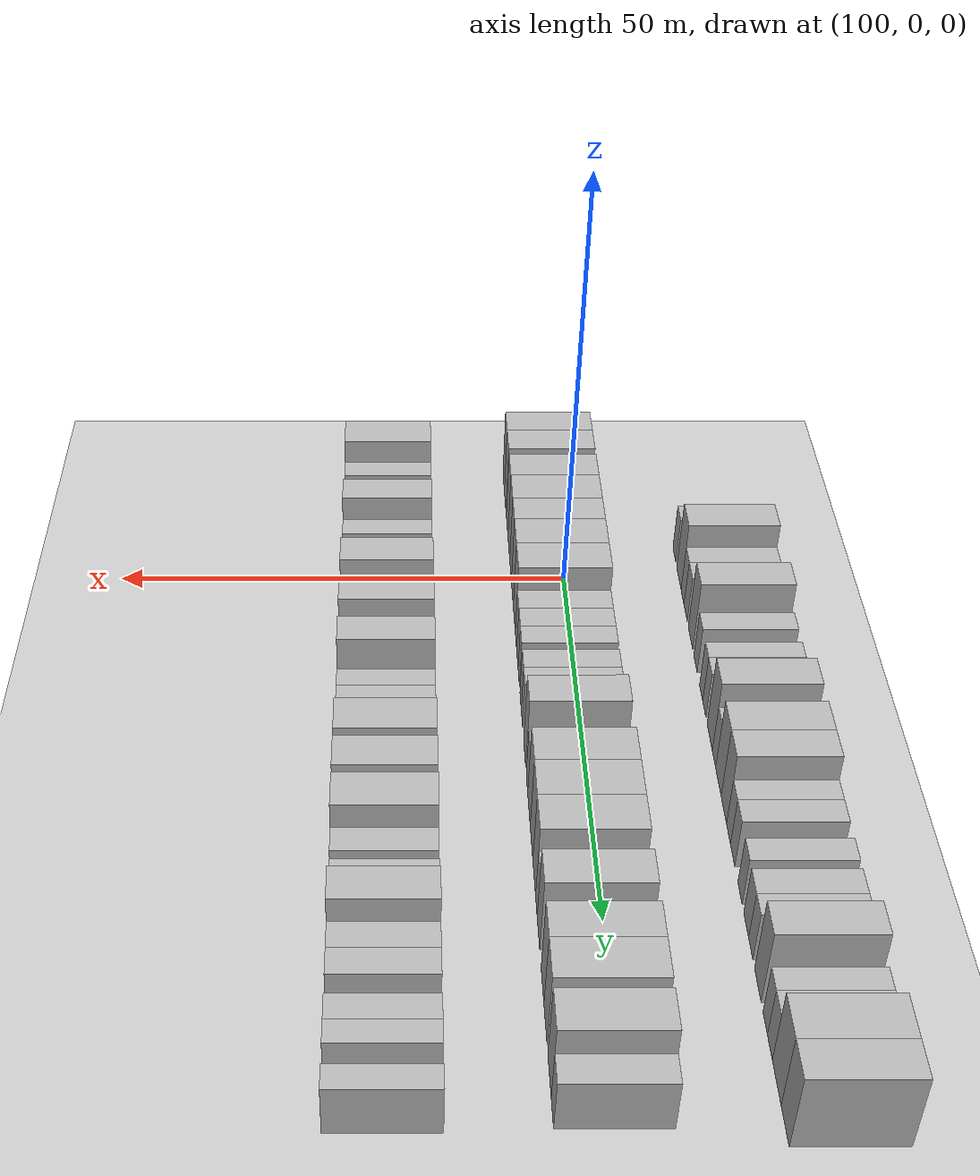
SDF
<sdf version="1.6">
 <world name="default">
  <include>
   <name>ground_plane_2</name>
   <uri>model://HANNAS_ground_plane</uri>
   <pose>100 0 0  0 0 0</pose>
  </include>
  <model name="building_620">
   <static>1</static>
   <pose>82.0000 -4.4028 0 0.000000 0.000000 0.000000</pose>
   <link name="link">
    <pose>0 0 3.00 0 0 0</pose>
    <collision name="collision"><geometry><box><size>10.0000 2.6106 6.0000</size></box></geometry></collision>
    <visual name="visual">
     <cast_shadows>0</cast_shadows>
     <geometry><box><size>10.0000 2.6106 6.0000</size></box></geometry>
     <material>
      <script>
       <uri>model://HANNAS_wall/materials/scripts</uri>
       <uri>model://HANNAS_wall/materials/textures</uri>
       <name>vrc/HANNAS_wall</name>
      </script>
     </material>
    </visual>
   </link>
  </model>
  <model name="building_621">
   <static>1</static>
   <pose>82.0000 -0.0643 0 0.000000 0.000000 0.000000</pose>
   <link name="link">
    <pose>0 0 4.50 0 0 0</pose>
    <collision name="collision"><geometry><box><size>10.0000 4.0662 9.0000</size></box></geometry></collision>
    <visual name="visual">
     <cast_shadows>0</cast_shadows>
     <geometry><box><size>10.0000 4.0662 9.0000</size></box></geometry>
     <material>
      <script>
       <uri>model://HANNAS_wall/materials/scripts</uri>
       <uri>model://HANNAS_wall/materials/textures</uri>
       <name>vrc/HANNAS_wall</name>
      </script>
     </material>
    </visual>
   </link>
  </model>
  <model name="building_622">
   <static>1</static>
   <pose>82.0000 3.2777 0 0.000000 0.000000 0.000000</pose>
   <link name="link">
    <pose>0 0 3.00 0 0 0</pose>
    <collision name="collision"><geometry><box><size>10.0000 2.6178 6.0000</size></box></geometry></collision>
    <visual name="visual">
     <cast_shadows>0</cast_shadows>
     <geometry><box><size>10.0000 2.6178 6.0000</size></box></geometry>
     <material>
      <script>
       <uri>model://HANNAS_wall/materials/scripts</uri>
       <uri>model://HANNAS_wall/materials/textures</uri>
       <name>vrc/HANNAS_wall</name>
      </script>
     </material>
    </visual>
   </link>
  </model>
  <model name="building_623">
   <static>1</static>
   <pose>82.0000 6.0067 0 0.000000 0.000000 0.000000</pose>
   <link name="link">
    <pose>0 0 3.00 0 0 0</pose>
    <collision name="collision"><geometry><box><size>10.0000 2.8402 6.0000</size></box></geometry></collision>
    <visual name="visual">
     <cast_shadows>0</cast_shadows>
     <geometry><box><size>10.0000 2.8402 6.0000</size></box></geometry>
     <material>
      <script>
       <uri>model://HANNAS_wall/materials/scripts</uri>
       <uri>model://HANNAS_wall/materials/textures</uri>
       <name>vrc/HANNAS_wall</name>
      </script>
     </material>
    </visual>
   </link>
  </model>
  <model name="building_624">
   <static>1</static>
   <pose>82.0000 10.3122 0 0.000000 0.000000 0.000000</pose>
   <link name="link">
    <pose>0 0 4.50 0 0 0</pose>
    <collision name="collision"><geometry><box><size>10.0000 3.7707 9.0000</size></box></geometry></collision>
    <visual name="visual">
     <cast_shadows>0</cast_shadows>
     <geometry><box><size>10.0000 3.7707 9.0000</size></box></geometry>
     <material>
      <script>
       <uri>model://HANNAS_wall/materials/scripts</uri>
       <uri>model://HANNAS_wall/materials/textures</uri>
       <name>vrc/HANNAS_wall</name>
      </script>
     </material>
    </visual>
   </link>
  </model>
  <model name="building_625">
   <static>1</static>
   <pose>82.0000 14.5459 0 0.000000 0.000000 0.000000</pose>
   <link name="link">
    <pose>0 0 3.00 0 0 0</pose>
    <collision name="collision"><geometry><box><size>10.0000 2.6968 6.0000</size></box></geometry></collision>
    <visual name="visual">
     <cast_shadows>0</cast_shadows>
     <geometry><box><size>10.0000 2.6968 6.0000</size></box></geometry>
     <material>
      <script>
       <uri>model://HANNAS_wall/materials/scripts</uri>
       <uri>model://HANNAS_wall/materials/textures</uri>
       <name>vrc/HANNAS_wall</name>
      </script>
     </material>
    </visual>
   </link>
  </model>
  <model name="building_626">
   <static>1</static>
   <pose>82.0000 19.1237 0 0.000000 0.000000 0.000000</pose>
   <link name="link">
    <pose>0 0 3.00 0 0 0</pose>
    <collision name="collision"><geometry><box><size>10.0000 2.4588 6.0000</size></box></geometry></collision>
    <visual name="visual">
     <cast_shadows>0</cast_shadows>
     <geometry><box><size>10.0000 2.4588 6.0000</size></box></geometry>
     <material>
      <script>
       <uri>model://HANNAS_wall/materials/scripts</uri>
       <uri>model://HANNAS_wall/materials/textures</uri>
       <name>vrc/HANNAS_wall</name>
      </script>
     </material>
    </visual>
   </link>
  </model>
  <model name="building_627">
   <static>1</static>
   <pose>82.0000 21.5980 0 0.000000 0.000000 0.000000</pose>
   <link name="link">
    <pose>0 0 3.00 0 0 0</pose>
    <collision name="collision"><geometry><box><size>10.0000 2.4897 6.0000</size></box></geometry></collision>
    <visual name="visual">
     <cast_shadows>0</cast_shadows>
     <geometry><box><size>10.0000 2.4897 6.0000</size></box></geometry>
     <material>
      <script>
       <uri>model://HANNAS_wall/materials/scripts</uri>
       <uri>model://HANNAS_wall/materials/textures</uri>
       <name>vrc/HANNAS_wall</name>
      </script>
     </material>
    </visual>
   </link>
  </model>
  <model name="building_628">
   <static>1</static>
   <pose>82.0000 25.7994 0 0.000000 0.000000 0.000000</pose>
   <link name="link">
    <pose>0 0 4.50 0 0 0</pose>
    <collision name="collision"><geometry><box><size>10.0000 3.9131 9.0000</size></box></geometry></collision>
    <visual name="visual">
     <cast_shadows>0</cast_shadows>
     <geometry><box><size>10.0000 3.9131 9.0000</size></box></geometry>
     <material>
      <script>
       <uri>model://HANNAS_wall/materials/scripts</uri>
       <uri>model://HANNAS_wall/materials/textures</uri>
       <name>vrc/HANNAS_wall</name>
      </script>
     </material>
    </visual>
   </link>
  </model>
  <model name="building_629">
   <static>1</static>
   <pose>82.0000 28.9595 0 0.000000 0.000000 0.000000</pose>
   <link name="link">
    <pose>0 0 3.00 0 0 0</pose>
    <collision name="collision"><geometry><box><size>10.0000 2.4070 6.0000</size></box></geometry></collision>
    <visual name="visual">
     <cast_shadows>0</cast_shadows>
     <geometry><box><size>10.0000 2.4070 6.0000</size></box></geometry>
     <material>
      <script>
       <uri>model://HANNAS_wall/materials/scripts</uri>
       <uri>model://HANNAS_wall/materials/textures</uri>
       <name>vrc/HANNAS_wall</name>
      </script>
     </material>
    </visual>
   </link>
  </model>
  <model name="building_630">
   <static>1</static>
   <pose>82.0000 32.1423 0 0.000000 0.000000 0.000000</pose>
   <link name="link">
    <pose>0 0 4.50 0 0 0</pose>
    <collision name="collision"><geometry><box><size>10.0000 3.9587 9.0000</size></box></geometry></collision>
    <visual name="visual">
     <cast_shadows>0</cast_shadows>
     <geometry><box><size>10.0000 3.9587 9.0000</size></box></geometry>
     <material>
      <script>
       <uri>model://HANNAS_wall/materials/scripts</uri>
       <uri>model://HANNAS_wall/materials/textures</uri>
       <name>vrc/HANNAS_wall</name>
      </script>
     </material>
    </visual>
   </link>
  </model>
  <model name="building_631">
   <static>1</static>
   <pose>82.0000 35.9850 0 0.000000 0.000000 0.000000</pose>
   <link name="link">
    <pose>0 0 4.50 0 0 0</pose>
    <collision name="collision"><geometry><box><size>10.0000 3.7268 9.0000</size></box></geometry></collision>
    <visual name="visual">
     <cast_shadows>0</cast_shadows>
     <geometry><box><size>10.0000 3.7268 9.0000</size></box></geometry>
     <material>
      <script>
       <uri>model://HANNAS_wall/materials/scripts</uri>
       <uri>model://HANNAS_wall/materials/textures</uri>
       <name>vrc/HANNAS_wall</name>
      </script>
     </material>
    </visual>
   </link>
  </model>
  <model name="building_632">
   <static>1</static>
   <pose>82.0000 39.1708 0 0.000000 0.000000 0.000000</pose>
   <link name="link">
    <pose>0 0 3.00 0 0 0</pose>
    <collision name="collision"><geometry><box><size>10.0000 2.6448 6.0000</size></box></geometry></collision>
    <visual name="visual">
     <cast_shadows>0</cast_shadows>
     <geometry><box><size>10.0000 2.6448 6.0000</size></box></geometry>
     <material>
      <script>
       <uri>model://HANNAS_wall/materials/scripts</uri>
       <uri>model://HANNAS_wall/materials/textures</uri>
       <name>vrc/HANNAS_wall</name>
      </script>
     </material>
    </visual>
   </link>
  </model>
  <model name="building_633">
   <static>1</static>
   <pose>82.0000 41.9061 0 0.000000 0.000000 0.000000</pose>
   <link name="link">
    <pose>0 0 3.00 0 0 0</pose>
    <collision name="collision"><geometry><box><size>10.0000 2.8257 6.0000</size></box></geometry></collision>
    <visual name="visual">
     <cast_shadows>0</cast_shadows>
     <geometry><box><size>10.0000 2.8257 6.0000</size></box></geometry>
     <material>
      <script>
       <uri>model://HANNAS_wall/materials/scripts</uri>
       <uri>model://HANNAS_wall/materials/textures</uri>
       <name>vrc/HANNAS_wall</name>
      </script>
     </material>
    </visual>
   </link>
  </model>
  <model name="building_634">
   <static>1</static>
   <pose>82.0000 46.6641 0 0.000000 0.000000 0.000000</pose>
   <link name="link">
    <pose>0 0 3.00 0 0 0</pose>
    <collision name="collision"><geometry><box><size>10.0000 2.6903 6.0000</size></box></geometry></collision>
    <visual name="visual">
     <cast_shadows>0</cast_shadows>
     <geometry><box><size>10.0000 2.6903 6.0000</size></box></geometry>
     <material>
      <script>
       <uri>model://HANNAS_wall/materials/scripts</uri>
       <uri>model://HANNAS_wall/materials/textures</uri>
       <name>vrc/HANNAS_wall</name>
      </script>
     </material>
    </visual>
   </link>
  </model>
  <model name="building_635">
   <static>1</static>
   <pose>82.0000 50.4717 0 0.000000 0.000000 0.000000</pose>
   <link name="link">
    <pose>0 0 3.00 0 0 0</pose>
    <collision name="collision"><geometry><box><size>10.0000 2.9249 6.0000</size></box></geometry></collision>
    <visual name="visual">
     <cast_shadows>0</cast_shadows>
     <geometry><box><size>10.0000 2.9249 6.0000</size></box></geometry>
     <material>
      <script>
       <uri>model://HANNAS_wall/materials/scripts</uri>
       <uri>model://HANNAS_wall/materials/textures</uri>
       <name>vrc/HANNAS_wall</name>
      </script>
     </material>
    </visual>
   </link>
  </model>
  <model name="building_636">
   <static>1</static>
   <pose>82.0000 53.1806 0 0.000000 0.000000 0.000000</pose>
   <link name="link">
    <pose>0 0 3.00 0 0 0</pose>
    <collision name="collision"><geometry><box><size>10.0000 2.4930 6.0000</size></box></geometry></collision>
    <visual name="visual">
     <cast_shadows>0</cast_shadows>
     <geometry><box><size>10.0000 2.4930 6.0000</size></box></geometry>
     <material>
      <script>
       <uri>model://HANNAS_wall/materials/scripts</uri>
       <uri>model://HANNAS_wall/materials/textures</uri>
       <name>vrc/HANNAS_wall</name>
      </script>
     </material>
    </visual>
   </link>
  </model>
  <model name="building_637">
   <static>1</static>
   <pose>82.0000 57.2948 0 0.000000 0.000000 0.000000</pose>
   <link name="link">
    <pose>0 0 4.50 0 0 0</pose>
    <collision name="collision"><geometry><box><size>10.0000 3.7355 9.0000</size></box></geometry></collision>
    <visual name="visual">
     <cast_shadows>0</cast_shadows>
     <geometry><box><size>10.0000 3.7355 9.0000</size></box></geometry>
     <material>
      <script>
       <uri>model://HANNAS_wall/materials/scripts</uri>
       <uri>model://HANNAS_wall/materials/textures</uri>
       <name>vrc/HANNAS_wall</name>
      </script>
     </material>
    </visual>
   </link>
  </model>
  <model name="building_638">
   <static>1</static>
   <pose>82.0000 61.3716 0 0.000000 0.000000 0.000000</pose>
   <link name="link">
    <pose>0 0 3.00 0 0 0</pose>
    <collision name="collision"><geometry><box><size>10.0000 2.4181 6.0000</size></box></geometry></collision>
    <visual name="visual">
     <cast_shadows>0</cast_shadows>
     <geometry><box><size>10.0000 2.4181 6.0000</size></box></geometry>
     <material>
      <script>
       <uri>model://HANNAS_wall/materials/scripts</uri>
       <uri>model://HANNAS_wall/materials/textures</uri>
       <name>vrc/HANNAS_wall</name>
      </script>
     </material>
    </visual>
   </link>
  </model>
  <model name="building_639">
   <static>1</static>
   <pose>82.0000 63.8871 0 0.000000 0.000000 0.000000</pose>
   <link name="link">
    <pose>0 0 3.00 0 0 0</pose>
    <collision name="collision"><geometry><box><size>10.0000 2.6130 6.0000</size></box></geometry></collision>
    <visual name="visual">
     <cast_shadows>0</cast_shadows>
     <geometry><box><size>10.0000 2.6130 6.0000</size></box></geometry>
     <material>
      <script>
       <uri>model://HANNAS_wall/materials/scripts</uri>
       <uri>model://HANNAS_wall/materials/textures</uri>
       <name>vrc/HANNAS_wall</name>
      </script>
     </material>
    </visual>
   </link>
  </model>
  <model name="building_640">
   <static>1</static>
   <pose>82.0000 67.4422 0 0.000000 0.000000 0.000000</pose>
   <link name="link">
    <pose>0 0 4.50 0 0 0</pose>
    <collision name="collision"><geometry><box><size>10.0000 4.4972 9.0000</size></box></geometry></collision>
    <visual name="visual">
     <cast_shadows>0</cast_shadows>
     <geometry><box><size>10.0000 4.4972 9.0000</size></box></geometry>
     <material>
      <script>
       <uri>model://HANNAS_wall/materials/scripts</uri>
       <uri>model://HANNAS_wall/materials/textures</uri>
       <name>vrc/HANNAS_wall</name>
      </script>
     </material>
    </visual>
   </link>
  </model>
  <model name="building_641">
   <static>1</static>
   <pose>82.0000 71.6640 0 0.000000 0.000000 0.000000</pose>
   <link name="link">
    <pose>0 0 4.50 0 0 0</pose>
    <collision name="collision"><geometry><box><size>10.0000 3.9463 9.0000</size></box></geometry></collision>
    <visual name="visual">
     <cast_shadows>0</cast_shadows>
     <geometry><box><size>10.0000 3.9463 9.0000</size></box></geometry>
     <material>
      <script>
       <uri>model://HANNAS_wall/materials/scripts</uri>
       <uri>model://HANNAS_wall/materials/textures</uri>
       <name>vrc/HANNAS_wall</name>
      </script>
     </material>
    </visual>
   </link>
  </model>
  <model name="building_801">
   <static>1</static>
   <pose>101.0000 -18.6708 0 0.000000 0.000000 0.000000</pose>
   <link name="link">
    <pose>0 0 4.50 0 0 0</pose>
    <collision name="collision"><geometry><box><size>10.0000 3.7725 9.0000</size></box></geometry></collision>
    <visual name="visual">
     <cast_shadows>0</cast_shadows>
     <geometry><box><size>10.0000 3.7725 9.0000</size></box></geometry>
     <material>
      <script>
       <uri>model://HANNAS_wall/materials/scripts</uri>
       <uri>model://HANNAS_wall/materials/textures</uri>
       <name>vrc/HANNAS_wall</name>
      </script>
     </material>
    </visual>
   </link>
  </model>
  <model name="building_802">
   <static>1</static>
   <pose>101.0000 -14.7965 0 0.000000 0.000000 0.000000</pose>
   <link name="link">
    <pose>0 0 4.50 0 0 0</pose>
    <collision name="collision"><geometry><box><size>10.0000 3.9760 9.0000</size></box></geometry></collision>
    <visual name="visual">
     <cast_shadows>0</cast_shadows>
     <geometry><box><size>10.0000 3.9760 9.0000</size></box></geometry>
     <material>
      <script>
       <uri>model://HANNAS_wall/materials/scripts</uri>
       <uri>model://HANNAS_wall/materials/textures</uri>
       <name>vrc/HANNAS_wall</name>
      </script>
     </material>
    </visual>
   </link>
  </model>
  <model name="building_803">
   <static>1</static>
   <pose>101.0000 -9.7458 0 0.000000 0.000000 0.000000</pose>
   <link name="link">
    <pose>0 0 4.50 0 0 0</pose>
    <collision name="collision"><geometry><box><size>10.0000 4.1254 9.0000</size></box></geometry></collision>
    <visual name="visual">
     <cast_shadows>0</cast_shadows>
     <geometry><box><size>10.0000 4.1254 9.0000</size></box></geometry>
     <material>
      <script>
       <uri>model://HANNAS_wall/materials/scripts</uri>
       <uri>model://HANNAS_wall/materials/textures</uri>
       <name>vrc/HANNAS_wall</name>
      </script>
     </material>
    </visual>
   </link>
  </model>
  <model name="building_804">
   <static>1</static>
   <pose>101.0000 -5.4670 0 0.000000 0.000000 0.000000</pose>
   <link name="link">
    <pose>0 0 4.50 0 0 0</pose>
    <collision name="collision"><geometry><box><size>10.0000 4.4321 9.0000</size></box></geometry></collision>
    <visual name="visual">
     <cast_shadows>0</cast_shadows>
     <geometry><box><size>10.0000 4.4321 9.0000</size></box></geometry>
     <material>
      <script>
       <uri>model://HANNAS_wall/materials/scripts</uri>
       <uri>model://HANNAS_wall/materials/textures</uri>
       <name>vrc/HANNAS_wall</name>
      </script>
     </material>
    </visual>
   </link>
  </model>
  <model name="building_805">
   <static>1</static>
   <pose>101.0000 -1.3213 0 0.000000 0.000000 0.000000</pose>
   <link name="link">
    <pose>0 0 4.50 0 0 0</pose>
    <collision name="collision"><geometry><box><size>10.0000 3.8593 9.0000</size></box></geometry></collision>
    <visual name="visual">
     <cast_shadows>0</cast_shadows>
     <geometry><box><size>10.0000 3.8593 9.0000</size></box></geometry>
     <material>
      <script>
       <uri>model://HANNAS_wall/materials/scripts</uri>
       <uri>model://HANNAS_wall/materials/textures</uri>
       <name>vrc/HANNAS_wall</name>
      </script>
     </material>
    </visual>
   </link>
  </model>
  <model name="building_806">
   <static>1</static>
   <pose>101.0000 2.7919 0 0.000000 0.000000 0.000000</pose>
   <link name="link">
    <pose>0 0 4.50 0 0 0</pose>
    <collision name="collision"><geometry><box><size>10.0000 4.3671 9.0000</size></box></geometry></collision>
    <visual name="visual">
     <cast_shadows>0</cast_shadows>
     <geometry><box><size>10.0000 4.3671 9.0000</size></box></geometry>
     <material>
      <script>
       <uri>model://HANNAS_wall/materials/scripts</uri>
       <uri>model://HANNAS_wall/materials/textures</uri>
       <name>vrc/HANNAS_wall</name>
      </script>
     </material>
    </visual>
   </link>
  </model>
  <model name="building_807">
   <static>1</static>
   <pose>101.0000 7.1715 0 0.000000 0.000000 0.000000</pose>
   <link name="link">
    <pose>0 0 4.50 0 0 0</pose>
    <collision name="collision"><geometry><box><size>10.0000 4.3922 9.0000</size></box></geometry></collision>
    <visual name="visual">
     <cast_shadows>0</cast_shadows>
     <geometry><box><size>10.0000 4.3922 9.0000</size></box></geometry>
     <material>
      <script>
       <uri>model://HANNAS_wall/materials/scripts</uri>
       <uri>model://HANNAS_wall/materials/textures</uri>
       <name>vrc/HANNAS_wall</name>
      </script>
     </material>
    </visual>
   </link>
  </model>
  <model name="building_808">
   <static>1</static>
   <pose>101.0000 10.8599 0 0.000000 0.000000 0.000000</pose>
   <link name="link">
    <pose>0 0 3.00 0 0 0</pose>
    <collision name="collision"><geometry><box><size>10.0000 2.9845 6.0000</size></box></geometry></collision>
    <visual name="visual">
     <cast_shadows>0</cast_shadows>
     <geometry><box><size>10.0000 2.9845 6.0000</size></box></geometry>
     <material>
      <script>
       <uri>model://HANNAS_wall/materials/scripts</uri>
       <uri>model://HANNAS_wall/materials/textures</uri>
       <name>vrc/HANNAS_wall</name>
      </script>
     </material>
    </visual>
   </link>
  </model>
  <model name="building_809">
   <static>1</static>
   <pose>101.0000 13.8276 0 0.000000 0.000000 0.000000</pose>
   <link name="link">
    <pose>0 0 3.00 0 0 0</pose>
    <collision name="collision"><geometry><box><size>10.0000 2.9509 6.0000</size></box></geometry></collision>
    <visual name="visual">
     <cast_shadows>0</cast_shadows>
     <geometry><box><size>10.0000 2.9509 6.0000</size></box></geometry>
     <material>
      <script>
       <uri>model://HANNAS_wall/materials/scripts</uri>
       <uri>model://HANNAS_wall/materials/textures</uri>
       <name>vrc/HANNAS_wall</name>
      </script>
     </material>
    </visual>
   </link>
  </model>
  <model name="building_810">
   <static>1</static>
   <pose>101.0000 16.6989 0 0.000000 0.000000 0.000000</pose>
   <link name="link">
    <pose>0 0 3.00 0 0 0</pose>
    <collision name="collision"><geometry><box><size>10.0000 2.7917 6.0000</size></box></geometry></collision>
    <visual name="visual">
     <cast_shadows>0</cast_shadows>
     <geometry><box><size>10.0000 2.7917 6.0000</size></box></geometry>
     <material>
      <script>
       <uri>model://HANNAS_wall/materials/scripts</uri>
       <uri>model://HANNAS_wall/materials/textures</uri>
       <name>vrc/HANNAS_wall</name>
      </script>
     </material>
    </visual>
   </link>
  </model>
  <model name="building_811">
   <static>1</static>
   <pose>101.0000 20.4607 0 0.000000 0.000000 0.000000</pose>
   <link name="link">
    <pose>0 0 3.00 0 0 0</pose>
    <collision name="collision"><geometry><box><size>10.0000 2.7321 6.0000</size></box></geometry></collision>
    <visual name="visual">
     <cast_shadows>0</cast_shadows>
     <geometry><box><size>10.0000 2.7321 6.0000</size></box></geometry>
     <material>
      <script>
       <uri>model://HANNAS_wall/materials/scripts</uri>
       <uri>model://HANNAS_wall/materials/textures</uri>
       <name>vrc/HANNAS_wall</name>
      </script>
     </material>
    </visual>
   </link>
  </model>
  <model name="building_812">
   <static>1</static>
   <pose>101.0000 23.0711 0 0.000000 0.000000 0.000000</pose>
   <link name="link">
    <pose>0 0 3.00 0 0 0</pose>
    <collision name="collision"><geometry><box><size>10.0000 2.4886 6.0000</size></box></geometry></collision>
    <visual name="visual">
     <cast_shadows>0</cast_shadows>
     <geometry><box><size>10.0000 2.4886 6.0000</size></box></geometry>
     <material>
      <script>
       <uri>model://HANNAS_wall/materials/scripts</uri>
       <uri>model://HANNAS_wall/materials/textures</uri>
       <name>vrc/HANNAS_wall</name>
      </script>
     </material>
    </visual>
   </link>
  </model>
  <model name="building_813">
   <static>1</static>
   <pose>101.0000 28.2526 0 0.000000 0.000000 0.000000</pose>
   <link name="link">
    <pose>0 0 4.50 0 0 0</pose>
    <collision name="collision"><geometry><box><size>10.0000 3.8743 9.0000</size></box></geometry></collision>
    <visual name="visual">
     <cast_shadows>0</cast_shadows>
     <geometry><box><size>10.0000 3.8743 9.0000</size></box></geometry>
     <material>
      <script>
       <uri>model://HANNAS_wall/materials/scripts</uri>
       <uri>model://HANNAS_wall/materials/textures</uri>
       <name>vrc/HANNAS_wall</name>
      </script>
     </material>
    </visual>
   </link>
  </model>
  <model name="building_814">
   <static>1</static>
   <pose>101.0000 32.4813 0 0.000000 0.000000 0.000000</pose>
   <link name="link">
    <pose>0 0 3.00 0 0 0</pose>
    <collision name="collision"><geometry><box><size>10.0000 2.5833 6.0000</size></box></geometry></collision>
    <visual name="visual">
     <cast_shadows>0</cast_shadows>
     <geometry><box><size>10.0000 2.5833 6.0000</size></box></geometry>
     <material>
      <script>
       <uri>model://HANNAS_wall/materials/scripts</uri>
       <uri>model://HANNAS_wall/materials/textures</uri>
       <name>vrc/HANNAS_wall</name>
      </script>
     </material>
    </visual>
   </link>
  </model>
  <model name="building_815">
   <static>1</static>
   <pose>101.0000 35.9687 0 0.000000 0.000000 0.000000</pose>
   <link name="link">
    <pose>0 0 4.50 0 0 0</pose>
    <collision name="collision"><geometry><box><size>10.0000 4.3914 9.0000</size></box></geometry></collision>
    <visual name="visual">
     <cast_shadows>0</cast_shadows>
     <geometry><box><size>10.0000 4.3914 9.0000</size></box></geometry>
     <material>
      <script>
       <uri>model://HANNAS_wall/materials/scripts</uri>
       <uri>model://HANNAS_wall/materials/textures</uri>
       <name>vrc/HANNAS_wall</name>
      </script>
     </material>
    </visual>
   </link>
  </model>
  <model name="building_816">
   <static>1</static>
   <pose>101.0000 40.4002 0 0.000000 0.000000 0.000000</pose>
   <link name="link">
    <pose>0 0 4.50 0 0 0</pose>
    <collision name="collision"><geometry><box><size>10.0000 4.4716 9.0000</size></box></geometry></collision>
    <visual name="visual">
     <cast_shadows>0</cast_shadows>
     <geometry><box><size>10.0000 4.4716 9.0000</size></box></geometry>
     <material>
      <script>
       <uri>model://HANNAS_wall/materials/scripts</uri>
       <uri>model://HANNAS_wall/materials/textures</uri>
       <name>vrc/HANNAS_wall</name>
      </script>
     </material>
    </visual>
   </link>
  </model>
  <model name="building_817">
   <static>1</static>
   <pose>101.0000 44.8185 0 0.000000 0.000000 0.000000</pose>
   <link name="link">
    <pose>0 0 4.50 0 0 0</pose>
    <collision name="collision"><geometry><box><size>10.0000 4.3651 9.0000</size></box></geometry></collision>
    <visual name="visual">
     <cast_shadows>0</cast_shadows>
     <geometry><box><size>10.0000 4.3651 9.0000</size></box></geometry>
     <material>
      <script>
       <uri>model://HANNAS_wall/materials/scripts</uri>
       <uri>model://HANNAS_wall/materials/textures</uri>
       <name>vrc/HANNAS_wall</name>
      </script>
     </material>
    </visual>
   </link>
  </model>
  <model name="building_818">
   <static>1</static>
   <pose>101.0000 48.2137 0 0.000000 0.000000 0.000000</pose>
   <link name="link">
    <pose>0 0 3.00 0 0 0</pose>
    <collision name="collision"><geometry><box><size>10.0000 2.4253 6.0000</size></box></geometry></collision>
    <visual name="visual">
     <cast_shadows>0</cast_shadows>
     <geometry><box><size>10.0000 2.4253 6.0000</size></box></geometry>
     <material>
      <script>
       <uri>model://HANNAS_wall/materials/scripts</uri>
       <uri>model://HANNAS_wall/materials/textures</uri>
       <name>vrc/HANNAS_wall</name>
      </script>
     </material>
    </visual>
   </link>
  </model>
  <model name="building_819">
   <static>1</static>
   <pose>101.0000 51.3904 0 0.000000 0.000000 0.000000</pose>
   <link name="link">
    <pose>0 0 4.50 0 0 0</pose>
    <collision name="collision"><geometry><box><size>10.0000 3.9280 9.0000</size></box></geometry></collision>
    <visual name="visual">
     <cast_shadows>0</cast_shadows>
     <geometry><box><size>10.0000 3.9280 9.0000</size></box></geometry>
     <material>
      <script>
       <uri>model://HANNAS_wall/materials/scripts</uri>
       <uri>model://HANNAS_wall/materials/textures</uri>
       <name>vrc/HANNAS_wall</name>
      </script>
     </material>
    </visual>
   </link>
  </model>
  <model name="building_820">
   <static>1</static>
   <pose>101.0000 57.3383 0 0.000000 0.000000 0.000000</pose>
   <link name="link">
    <pose>0 0 4.50 0 0 0</pose>
    <collision name="collision"><geometry><box><size>10.0000 3.9679 9.0000</size></box></geometry></collision>
    <visual name="visual">
     <cast_shadows>0</cast_shadows>
     <geometry><box><size>10.0000 3.9679 9.0000</size></box></geometry>
     <material>
      <script>
       <uri>model://HANNAS_wall/materials/scripts</uri>
       <uri>model://HANNAS_wall/materials/textures</uri>
       <name>vrc/HANNAS_wall</name>
      </script>
     </material>
    </visual>
   </link>
  </model>
  <model name="building_821">
   <static>1</static>
   <pose>101.0000 61.4791 0 0.000000 0.000000 0.000000</pose>
   <link name="link">
    <pose>0 0 4.50 0 0 0</pose>
    <collision name="collision"><geometry><box><size>10.0000 4.3136 9.0000</size></box></geometry></collision>
    <visual name="visual">
     <cast_shadows>0</cast_shadows>
     <geometry><box><size>10.0000 4.3136 9.0000</size></box></geometry>
     <material>
      <script>
       <uri>model://HANNAS_wall/materials/scripts</uri>
       <uri>model://HANNAS_wall/materials/textures</uri>
       <name>vrc/HANNAS_wall</name>
      </script>
     </material>
    </visual>
   </link>
  </model>
  <model name="building_822">
   <static>1</static>
   <pose>101.0000 66.7924 0 0.000000 0.000000 0.000000</pose>
   <link name="link">
    <pose>0 0 4.50 0 0 0</pose>
    <collision name="collision"><geometry><box><size>10.0000 4.3130 9.0000</size></box></geometry></collision>
    <visual name="visual">
     <cast_shadows>0</cast_shadows>
     <geometry><box><size>10.0000 4.3130 9.0000</size></box></geometry>
     <material>
      <script>
       <uri>model://HANNAS_wall/materials/scripts</uri>
       <uri>model://HANNAS_wall/materials/textures</uri>
       <name>vrc/HANNAS_wall</name>
      </script>
     </material>
    </visual>
   </link>
  </model>
  <model name="building_823">
   <static>1</static>
   <pose>101.0000 70.4316 0 0.000000 0.000000 0.000000</pose>
   <link name="link">
    <pose>0 0 3.00 0 0 0</pose>
    <collision name="collision"><geometry><box><size>10.0000 2.9655 6.0000</size></box></geometry></collision>
    <visual name="visual">
     <cast_shadows>0</cast_shadows>
     <geometry><box><size>10.0000 2.9655 6.0000</size></box></geometry>
     <material>
      <script>
       <uri>model://HANNAS_wall/materials/scripts</uri>
       <uri>model://HANNAS_wall/materials/textures</uri>
       <name>vrc/HANNAS_wall</name>
      </script>
     </material>
    </visual>
   </link>
  </model>
  <model name="building_975">
   <static>1</static>
   <pose>120.0000 -20.9241 0 0.000000 0.000000 0.000000</pose>
   <link name="link">
    <pose>0 0 3.00 0 0 0</pose>
    <collision name="collision"><geometry><box><size>10.0000 2.7102 6.0000</size></box></geometry></collision>
    <visual name="visual">
     <cast_shadows>0</cast_shadows>
     <geometry><box><size>10.0000 2.7102 6.0000</size></box></geometry>
     <material>
      <script>
       <uri>model://HANNAS_wall/materials/scripts</uri>
       <uri>model://HANNAS_wall/materials/textures</uri>
       <name>vrc/HANNAS_wall</name>
      </script>
     </material>
    </visual>
   </link>
  </model>
  <model name="building_976">
   <static>1</static>
   <pose>120.0000 -16.4765 0 0.000000 0.000000 0.000000</pose>
   <link name="link">
    <pose>0 0 4.50 0 0 0</pose>
    <collision name="collision"><geometry><box><size>10.0000 4.1848 9.0000</size></box></geometry></collision>
    <visual name="visual">
     <cast_shadows>0</cast_shadows>
     <geometry><box><size>10.0000 4.1848 9.0000</size></box></geometry>
     <material>
      <script>
       <uri>model://HANNAS_wall/materials/scripts</uri>
       <uri>model://HANNAS_wall/materials/textures</uri>
       <name>vrc/HANNAS_wall</name>
      </script>
     </material>
    </visual>
   </link>
  </model>
  <model name="building_977">
   <static>1</static>
   <pose>120.0000 -13.0008 0 0.000000 0.000000 0.000000</pose>
   <link name="link">
    <pose>0 0 3.00 0 0 0</pose>
    <collision name="collision"><geometry><box><size>10.0000 2.7666 6.0000</size></box></geometry></collision>
    <visual name="visual">
     <cast_shadows>0</cast_shadows>
     <geometry><box><size>10.0000 2.7666 6.0000</size></box></geometry>
     <material>
      <script>
       <uri>model://HANNAS_wall/materials/scripts</uri>
       <uri>model://HANNAS_wall/materials/textures</uri>
       <name>vrc/HANNAS_wall</name>
      </script>
     </material>
    </visual>
   </link>
  </model>
  <model name="building_978">
   <static>1</static>
   <pose>120.0000 -8.2269 0 0.000000 0.000000 0.000000</pose>
   <link name="link">
    <pose>0 0 3.00 0 0 0</pose>
    <collision name="collision"><geometry><box><size>10.0000 2.7814 6.0000</size></box></geometry></collision>
    <visual name="visual">
     <cast_shadows>0</cast_shadows>
     <geometry><box><size>10.0000 2.7814 6.0000</size></box></geometry>
     <material>
      <script>
       <uri>model://HANNAS_wall/materials/scripts</uri>
       <uri>model://HANNAS_wall/materials/textures</uri>
       <name>vrc/HANNAS_wall</name>
      </script>
     </material>
    </visual>
   </link>
  </model>
  <model name="building_979">
   <static>1</static>
   <pose>120.0000 -4.9843 0 0.000000 0.000000 0.000000</pose>
   <link name="link">
    <pose>0 0 4.50 0 0 0</pose>
    <collision name="collision"><geometry><box><size>10.0000 3.7038 9.0000</size></box></geometry></collision>
    <visual name="visual">
     <cast_shadows>0</cast_shadows>
     <geometry><box><size>10.0000 3.7038 9.0000</size></box></geometry>
     <material>
      <script>
       <uri>model://HANNAS_wall/materials/scripts</uri>
       <uri>model://HANNAS_wall/materials/textures</uri>
       <name>vrc/HANNAS_wall</name>
      </script>
     </material>
    </visual>
   </link>
  </model>
  <model name="building_980">
   <static>1</static>
   <pose>120.0000 -1.8136 0 0.000000 0.000000 0.000000</pose>
   <link name="link">
    <pose>0 0 3.00 0 0 0</pose>
    <collision name="collision"><geometry><box><size>10.0000 2.6375 6.0000</size></box></geometry></collision>
    <visual name="visual">
     <cast_shadows>0</cast_shadows>
     <geometry><box><size>10.0000 2.6375 6.0000</size></box></geometry>
     <material>
      <script>
       <uri>model://HANNAS_wall/materials/scripts</uri>
       <uri>model://HANNAS_wall/materials/textures</uri>
       <name>vrc/HANNAS_wall</name>
      </script>
     </material>
    </visual>
   </link>
  </model>
  <model name="building_981">
   <static>1</static>
   <pose>120.0000 1.7861 0 0.000000 0.000000 0.000000</pose>
   <link name="link">
    <pose>0 0 3.00 0 0 0</pose>
    <collision name="collision"><geometry><box><size>10.0000 2.5619 6.0000</size></box></geometry></collision>
    <visual name="visual">
     <cast_shadows>0</cast_shadows>
     <geometry><box><size>10.0000 2.5619 6.0000</size></box></geometry>
     <material>
      <script>
       <uri>model://HANNAS_wall/materials/scripts</uri>
       <uri>model://HANNAS_wall/materials/textures</uri>
       <name>vrc/HANNAS_wall</name>
      </script>
     </material>
    </visual>
   </link>
  </model>
  <model name="building_982">
   <static>1</static>
   <pose>120.0000 6.0015 0 0.000000 0.000000 0.000000</pose>
   <link name="link">
    <pose>0 0 4.50 0 0 0</pose>
    <collision name="collision"><geometry><box><size>10.0000 3.8691 9.0000</size></box></geometry></collision>
    <visual name="visual">
     <cast_shadows>0</cast_shadows>
     <geometry><box><size>10.0000 3.8691 9.0000</size></box></geometry>
     <material>
      <script>
       <uri>model://HANNAS_wall/materials/scripts</uri>
       <uri>model://HANNAS_wall/materials/textures</uri>
       <name>vrc/HANNAS_wall</name>
      </script>
     </material>
    </visual>
   </link>
  </model>
  <model name="building_983">
   <static>1</static>
   <pose>120.0000 9.2606 0 0.000000 0.000000 0.000000</pose>
   <link name="link">
    <pose>0 0 3.00 0 0 0</pose>
    <collision name="collision"><geometry><box><size>10.0000 2.6490 6.0000</size></box></geometry></collision>
    <visual name="visual">
     <cast_shadows>0</cast_shadows>
     <geometry><box><size>10.0000 2.6490 6.0000</size></box></geometry>
     <material>
      <script>
       <uri>model://HANNAS_wall/materials/scripts</uri>
       <uri>model://HANNAS_wall/materials/textures</uri>
       <name>vrc/HANNAS_wall</name>
      </script>
     </material>
    </visual>
   </link>
  </model>
  <model name="building_984">
   <static>1</static>
   <pose>120.0000 12.5701 0 0.000000 0.000000 0.000000</pose>
   <link name="link">
    <pose>0 0 4.50 0 0 0</pose>
    <collision name="collision"><geometry><box><size>10.0000 3.9699 9.0000</size></box></geometry></collision>
    <visual name="visual">
     <cast_shadows>0</cast_shadows>
     <geometry><box><size>10.0000 3.9699 9.0000</size></box></geometry>
     <material>
      <script>
       <uri>model://HANNAS_wall/materials/scripts</uri>
       <uri>model://HANNAS_wall/materials/textures</uri>
       <name>vrc/HANNAS_wall</name>
      </script>
     </material>
    </visual>
   </link>
  </model>
  <model name="building_985">
   <static>1</static>
   <pose>120.0000 15.9355 0 0.000000 0.000000 0.000000</pose>
   <link name="link">
    <pose>0 0 3.00 0 0 0</pose>
    <collision name="collision"><geometry><box><size>10.0000 2.7609 6.0000</size></box></geometry></collision>
    <visual name="visual">
     <cast_shadows>0</cast_shadows>
     <geometry><box><size>10.0000 2.7609 6.0000</size></box></geometry>
     <material>
      <script>
       <uri>model://HANNAS_wall/materials/scripts</uri>
       <uri>model://HANNAS_wall/materials/textures</uri>
       <name>vrc/HANNAS_wall</name>
      </script>
     </material>
    </visual>
   </link>
  </model>
  <model name="building_986">
   <static>1</static>
   <pose>120.0000 19.1717 0 0.000000 0.000000 0.000000</pose>
   <link name="link">
    <pose>0 0 4.50 0 0 0</pose>
    <collision name="collision"><geometry><box><size>10.0000 3.7116 9.0000</size></box></geometry></collision>
    <visual name="visual">
     <cast_shadows>0</cast_shadows>
     <geometry><box><size>10.0000 3.7116 9.0000</size></box></geometry>
     <material>
      <script>
       <uri>model://HANNAS_wall/materials/scripts</uri>
       <uri>model://HANNAS_wall/materials/textures</uri>
       <name>vrc/HANNAS_wall</name>
      </script>
     </material>
    </visual>
   </link>
  </model>
  <model name="building_987">
   <static>1</static>
   <pose>120.0000 23.2560 0 0.000000 0.000000 0.000000</pose>
   <link name="link">
    <pose>0 0 3.00 0 0 0</pose>
    <collision name="collision"><geometry><box><size>10.0000 2.4569 6.0000</size></box></geometry></collision>
    <visual name="visual">
     <cast_shadows>0</cast_shadows>
     <geometry><box><size>10.0000 2.4569 6.0000</size></box></geometry>
     <material>
      <script>
       <uri>model://HANNAS_wall/materials/scripts</uri>
       <uri>model://HANNAS_wall/materials/textures</uri>
       <name>vrc/HANNAS_wall</name>
      </script>
     </material>
    </visual>
   </link>
  </model>
  <model name="building_988">
   <static>1</static>
   <pose>120.0000 25.8073 0 0.000000 0.000000 0.000000</pose>
   <link name="link">
    <pose>0 0 3.00 0 0 0</pose>
    <collision name="collision"><geometry><box><size>10.0000 2.6458 6.0000</size></box></geometry></collision>
    <visual name="visual">
     <cast_shadows>0</cast_shadows>
     <geometry><box><size>10.0000 2.6458 6.0000</size></box></geometry>
     <material>
      <script>
       <uri>model://HANNAS_wall/materials/scripts</uri>
       <uri>model://HANNAS_wall/materials/textures</uri>
       <name>vrc/HANNAS_wall</name>
      </script>
     </material>
    </visual>
   </link>
  </model>
  <model name="building_989">
   <static>1</static>
   <pose>120.0000 28.3635 0 0.000000 0.000000 0.000000</pose>
   <link name="link">
    <pose>0 0 3.00 0 0 0</pose>
    <collision name="collision"><geometry><box><size>10.0000 2.4667 6.0000</size></box></geometry></collision>
    <visual name="visual">
     <cast_shadows>0</cast_shadows>
     <geometry><box><size>10.0000 2.4667 6.0000</size></box></geometry>
     <material>
      <script>
       <uri>model://HANNAS_wall/materials/scripts</uri>
       <uri>model://HANNAS_wall/materials/textures</uri>
       <name>vrc/HANNAS_wall</name>
      </script>
     </material>
    </visual>
   </link>
  </model>
  <model name="building_990">
   <static>1</static>
   <pose>120.0000 31.7767 0 0.000000 0.000000 0.000000</pose>
   <link name="link">
    <pose>0 0 4.50 0 0 0</pose>
    <collision name="collision"><geometry><box><size>10.0000 4.3598 9.0000</size></box></geometry></collision>
    <visual name="visual">
     <cast_shadows>0</cast_shadows>
     <geometry><box><size>10.0000 4.3598 9.0000</size></box></geometry>
     <material>
      <script>
       <uri>model://HANNAS_wall/materials/scripts</uri>
       <uri>model://HANNAS_wall/materials/textures</uri>
       <name>vrc/HANNAS_wall</name>
      </script>
     </material>
    </visual>
   </link>
  </model>
  <model name="building_991">
   <static>1</static>
   <pose>120.0000 36.8800 0 0.000000 0.000000 0.000000</pose>
   <link name="link">
    <pose>0 0 4.50 0 0 0</pose>
    <collision name="collision"><geometry><box><size>10.0000 3.8467 9.0000</size></box></geometry></collision>
    <visual name="visual">
     <cast_shadows>0</cast_shadows>
     <geometry><box><size>10.0000 3.8467 9.0000</size></box></geometry>
     <material>
      <script>
       <uri>model://HANNAS_wall/materials/scripts</uri>
       <uri>model://HANNAS_wall/materials/textures</uri>
       <name>vrc/HANNAS_wall</name>
      </script>
     </material>
    </visual>
   </link>
  </model>
  <model name="building_992">
   <static>1</static>
   <pose>120.0000 41.9079 0 0.000000 0.000000 0.000000</pose>
   <link name="link">
    <pose>0 0 4.50 0 0 0</pose>
    <collision name="collision"><geometry><box><size>10.0000 4.2092 9.0000</size></box></geometry></collision>
    <visual name="visual">
     <cast_shadows>0</cast_shadows>
     <geometry><box><size>10.0000 4.2092 9.0000</size></box></geometry>
     <material>
      <script>
       <uri>model://HANNAS_wall/materials/scripts</uri>
       <uri>model://HANNAS_wall/materials/textures</uri>
       <name>vrc/HANNAS_wall</name>
      </script>
     </material>
    </visual>
   </link>
  </model>
  <model name="building_993">
   <static>1</static>
   <pose>120.0000 45.4308 0 0.000000 0.000000 0.000000</pose>
   <link name="link">
    <pose>0 0 3.00 0 0 0</pose>
    <collision name="collision"><geometry><box><size>10.0000 2.8365 6.0000</size></box></geometry></collision>
    <visual name="visual">
     <cast_shadows>0</cast_shadows>
     <geometry><box><size>10.0000 2.8365 6.0000</size></box></geometry>
     <material>
      <script>
       <uri>model://HANNAS_wall/materials/scripts</uri>
       <uri>model://HANNAS_wall/materials/textures</uri>
       <name>vrc/HANNAS_wall</name>
      </script>
     </material>
    </visual>
   </link>
  </model>
  <model name="building_994">
   <static>1</static>
   <pose>120.0000 49.1133 0 0.000000 0.000000 0.000000</pose>
   <link name="link">
    <pose>0 0 3.00 0 0 0</pose>
    <collision name="collision"><geometry><box><size>10.0000 2.5286 6.0000</size></box></geometry></collision>
    <visual name="visual">
     <cast_shadows>0</cast_shadows>
     <geometry><box><size>10.0000 2.5286 6.0000</size></box></geometry>
     <material>
      <script>
       <uri>model://HANNAS_wall/materials/scripts</uri>
       <uri>model://HANNAS_wall/materials/textures</uri>
       <name>vrc/HANNAS_wall</name>
      </script>
     </material>
    </visual>
   </link>
  </model>
  <model name="building_995">
   <static>1</static>
   <pose>120.0000 53.2706 0 0.000000 0.000000 0.000000</pose>
   <link name="link">
    <pose>0 0 4.50 0 0 0</pose>
    <collision name="collision"><geometry><box><size>10.0000 3.7861 9.0000</size></box></geometry></collision>
    <visual name="visual">
     <cast_shadows>0</cast_shadows>
     <geometry><box><size>10.0000 3.7861 9.0000</size></box></geometry>
     <material>
      <script>
       <uri>model://HANNAS_wall/materials/scripts</uri>
       <uri>model://HANNAS_wall/materials/textures</uri>
       <name>vrc/HANNAS_wall</name>
      </script>
     </material>
    </visual>
   </link>
  </model>
  <model name="building_996">
   <static>1</static>
   <pose>120.0000 56.5780 0 0.000000 0.000000 0.000000</pose>
   <link name="link">
    <pose>0 0 3.00 0 0 0</pose>
    <collision name="collision"><geometry><box><size>10.0000 2.8288 6.0000</size></box></geometry></collision>
    <visual name="visual">
     <cast_shadows>0</cast_shadows>
     <geometry><box><size>10.0000 2.8288 6.0000</size></box></geometry>
     <material>
      <script>
       <uri>model://HANNAS_wall/materials/scripts</uri>
       <uri>model://HANNAS_wall/materials/textures</uri>
       <name>vrc/HANNAS_wall</name>
      </script>
     </material>
    </visual>
   </link>
  </model>
  <model name="building_997">
   <static>1</static>
   <pose>120.0000 59.4409 0 0.000000 0.000000 0.000000</pose>
   <link name="link">
    <pose>0 0 3.00 0 0 0</pose>
    <collision name="collision"><geometry><box><size>10.0000 2.8970 6.0000</size></box></geometry></collision>
    <visual name="visual">
     <cast_shadows>0</cast_shadows>
     <geometry><box><size>10.0000 2.8970 6.0000</size></box></geometry>
     <material>
      <script>
       <uri>model://HANNAS_wall/materials/scripts</uri>
       <uri>model://HANNAS_wall/materials/textures</uri>
       <name>vrc/HANNAS_wall</name>
      </script>
     </material>
    </visual>
   </link>
  </model>
  <model name="building_998">
   <static>1</static>
   <pose>120.0000 64.1763 0 0.000000 0.000000 0.000000</pose>
   <link name="link">
    <pose>0 0 3.00 0 0 0</pose>
    <collision name="collision"><geometry><box><size>10.0000 2.5738 6.0000</size></box></geometry></collision>
    <visual name="visual">
     <cast_shadows>0</cast_shadows>
     <geometry><box><size>10.0000 2.5738 6.0000</size></box></geometry>
     <material>
      <script>
       <uri>model://HANNAS_wall/materials/scripts</uri>
       <uri>model://HANNAS_wall/materials/textures</uri>
       <name>vrc/HANNAS_wall</name>
      </script>
     </material>
    </visual>
   </link>
  </model>
  <model name="building_999">
   <static>1</static>
   <pose>120.0000 66.7051 0 0.000000 0.000000 0.000000</pose>
   <link name="link">
    <pose>0 0 3.00 0 0 0</pose>
    <collision name="collision"><geometry><box><size>10.0000 2.4837 6.0000</size></box></geometry></collision>
    <visual name="visual">
     <cast_shadows>0</cast_shadows>
     <geometry><box><size>10.0000 2.4837 6.0000</size></box></geometry>
     <material>
      <script>
       <uri>model://HANNAS_wall/materials/scripts</uri>
       <uri>model://HANNAS_wall/materials/textures</uri>
       <name>vrc/HANNAS_wall</name>
      </script>
     </material>
    </visual>
   </link>
  </model>
  <model name="building_1000">
   <static>1</static>
   <pose>120.0000 71.1485 0 0.000000 0.000000 0.000000</pose>
   <link name="link">
    <pose>0 0 3.00 0 0 0</pose>
    <collision name="collision"><geometry><box><size>10.0000 2.4033 6.0000</size></box></geometry></collision>
    <visual name="visual">
     <cast_shadows>0</cast_shadows>
     <geometry><box><size>10.0000 2.4033 6.0000</size></box></geometry>
     <material>
      <script>
       <uri>model://HANNAS_wall/materials/scripts</uri>
       <uri>model://HANNAS_wall/materials/textures</uri>
       <name>vrc/HANNAS_wall</name>
      </script>
     </material>
    </visual>
   </link>
  </model>
 </world>
</sdf>
